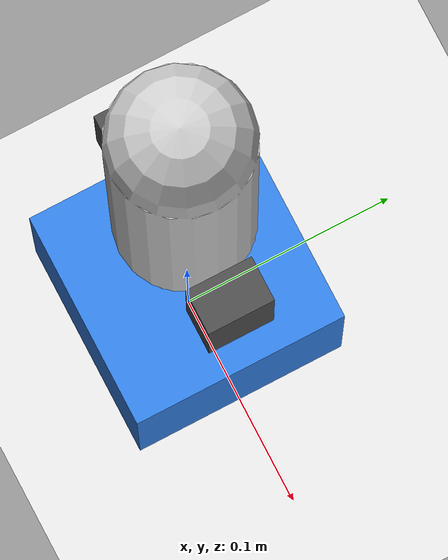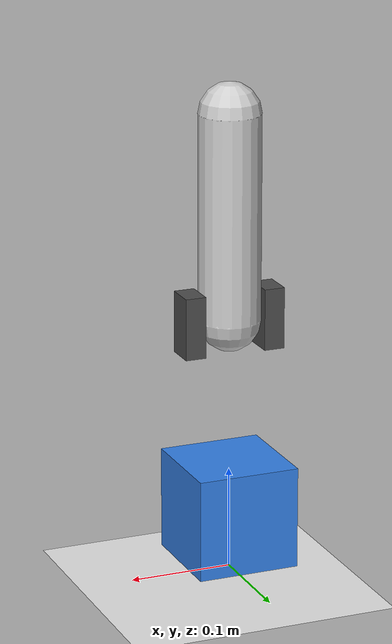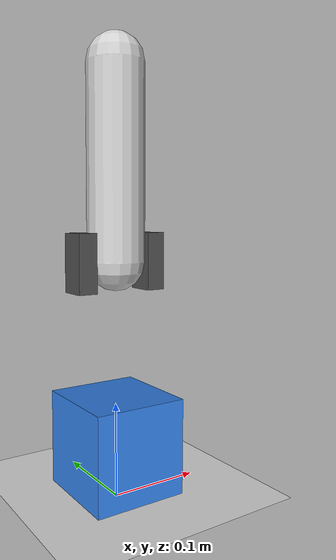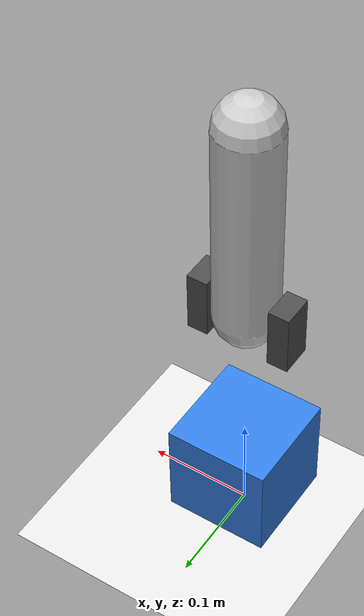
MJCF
<mujoco model="hand_box_tunneling">
  <compiler angle="radian" coordinate="local"/>

  <option timestep="0.005" integrator="implicitfast">
    <flag eulerdamp="disable"/>
  </option>

  <default>
    <geom contype="1" conaffinity="1" friction="1.0 0.005 0.0001" solimp="0.99 0.995 0.01" solref="0.01 1"/>
    <default class="hand">
      <geom group="2"/>
    </default>
  </default>

  <visual>
    <headlight diffuse="0.6 0.6 0.6" ambient="0.3 0.3 0.3" specular="0.1 0.1 0.1"/>
    <scale forcewidth="0.04" contactwidth="0.05" contactheight="0.02"/>
  </visual>

  <worldbody>
    <!-- Camera and lighting -->
    <camera name="cam0" pos="0 -1.2 0.7"/>
    <light pos="0 0 2.0" dir="0 0 -1" directional="true"/>

    <!-- Plane at z=0 -->
    <geom name="floor" type="plane" size="0 0 0.05" material="floor" rgba="0.9 0.9 0.9 1"/>

    <!-- Cube resting slightly above plane -->
    <body name="cube" pos="0 0 0.06">
      <freejoint/>
      <geom type="box" size="0.05 0.05 0.05" rgba="0.2 0.5 0.9 1"/>
    </body>

    <!-- Hand: capsule palm plus two fingertip boxes -->
    <!-- Oriented so capsule long axis is along x, fingers below towards the plane -->
    <body name="hand" pos="0 0 0.35" quat="0.7071068 0 0 0.7071068">
      <!-- quat rotates z-axis to x-axis -->
      <freejoint/>
      <geom class="hand" name="hand_capsule" type="capsule" size="0.03 0.10" rgba="0.8 0.8 0.8 1"/>
      <!-- fingers near one end of capsule, offset along +x (original z before quat) -->
      <geom class="hand" name="left_finger" type="box" size="0.015 0.01 0.03" pos="0 0.04 -0.10" rgba="0.3 0.3 0.3 1"/>
      <geom class="hand" name="right_finger" type="box" size="0.015 0.01 0.03" pos="0 -0.04 -0.10" rgba="0.3 0.3 0.3 1"/>
    </body>
  </worldbody>

  <asset>
    <texture type="2d" name="floor_tex" builtin="checker" width="300" height="300" rgb1="0.8 0.8 0.8" rgb2="0.7 0.7 0.7"/>
    <material name="floor" texture="floor_tex" texrepeat="4 4"/>
  </asset>
</mujoco>
